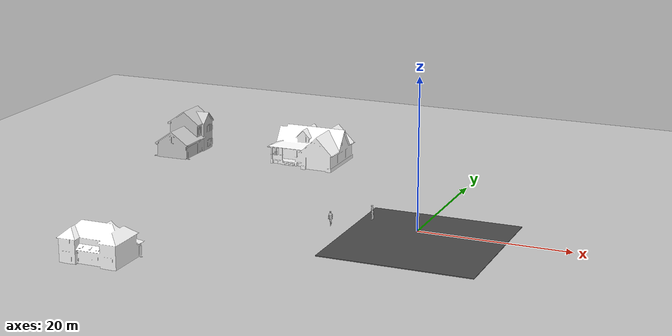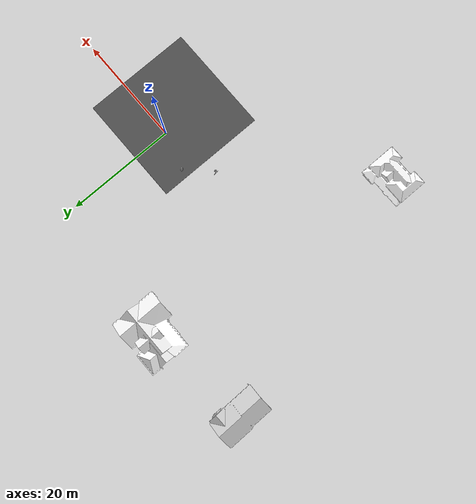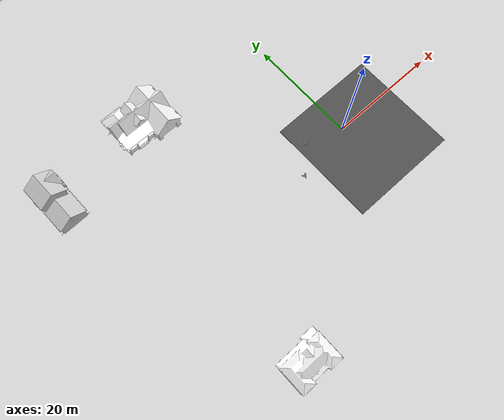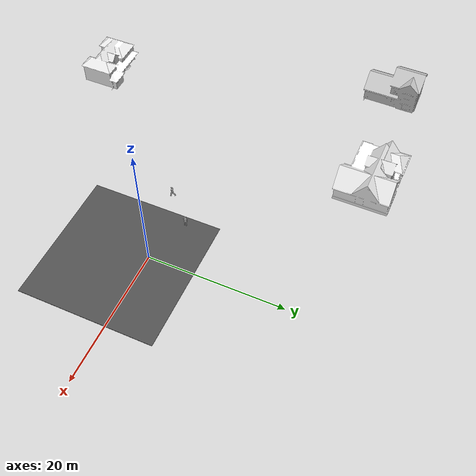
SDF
<sdf version="1.6">
 <world name="default">
  <light name="sun" type="directional">
   <pose>0 0 10 0 -0 0</pose>
   <diffuse>0.8 0.8 0.8 1</diffuse>
   <specular>0.1 0.1 0.1 1</specular>
   <attenuation>
    <range>1000</range>
    <constant>0.9</constant>
    <linear>0.01</linear>
    <quadratic>0.001</quadratic>
   </attenuation>
   <direction>-0.5 0.5 -1</direction>
  </light>
  <model name="ground_plane">
   <static>1</static>
   <link name="link">
    <collision name="collision">
     <geometry><plane><normal>0 0 1</normal><size>100 100</size></plane></geometry>
     <surface><friction><ode><mu>100</mu><mu2>50</mu2></ode></friction></surface>
    </collision>
    <visual name="visual">
     <cast_shadows>0</cast_shadows>
     <geometry><plane><normal>0 0 1</normal><size>100 100</size></plane></geometry>
     <material>
      <script><uri>file://media/materials/scripts/gazebo.material</uri><name>Gazebo/Grey</name></script>
     </material>
    </visual>
   </link>
  </model>
  <gravity>0 0 -9.8</gravity>
  <magnetic_field>6e-06 2.3e-05 -4.2e-05</magnetic_field>
  <atmosphere type="adiabatic"/>
  <physics name="default_physics" default="0" type="ode">
   <max_step_size>0.001</max_step_size>
   <real_time_factor>1</real_time_factor>
   <real_time_update_rate>1000</real_time_update_rate>
  </physics>
  <scene><ambient>0.4 0.4 0.4 1</ambient><background>0.7 0.7 0.7 1</background><shadows>1</shadows></scene>
  <spherical_coordinates>
   <surface_model>EARTH_WGS84</surface_model>
   <latitude_deg>0</latitude_deg>
   <longitude_deg>0</longitude_deg>
   <elevation>0</elevation>
   <heading_deg>0</heading_deg>
  </spherical_coordinates>
  <model name="asphalt_plane">
   <static>1</static>
   <link name="link">
    <collision name="collision"><geometry><box><size>19.9999 20 0.1</size></box></geometry></collision>
    <visual name="visual">
     <cast_shadows>0</cast_shadows>
     <geometry><box><size>19.9999 20 0.1</size></box></geometry>
     <material>
      <script>
       <uri>model://asphalt_plane/materials/scripts</uri>
       <uri>model://asphalt_plane/materials/textures</uri>
       <name>vrc/asphalt</name>
      </script>
     </material>
    </visual>
   </link>
   <pose>1.68773 -3.19362 0 0 -0 0</pose>
  </model>
  <model name="House 1">
   <static>1</static>
   <link name="link">
    <collision name="collision">
     <geometry><mesh><uri>model://house_1/meshes/house_1.dae</uri></mesh></geometry>
    </collision>
    <visual name="visual">
     <geometry><mesh><uri>model://house_1/meshes/house_1.dae</uri></mesh></geometry>
     <material>
      <script>
       <uri>model://house_1/materials/scripts</uri>
       <uri>model://house_1/materials/textures</uri>
       <name>House_1/Diffuse</name>
      </script>
      <shader type="normal_map_object_space"><normal_map>House_1_Normal.png</normal_map></shader>
     </material>
    </visual>
   </link>
   <pose>-24.9541 23.7241 0 0 -0 0</pose>
  </model>
  <model name="House 2">
   <static>1</static>
   <link name="link">
    <collision name="collision">
     <geometry><mesh><uri>model://house_2/meshes/house_2.dae</uri></mesh></geometry>
    </collision>
    <visual name="visual">
     <geometry><mesh><uri>model://house_2/meshes/house_2.dae</uri></mesh></geometry>
     <material>
      <script>
       <uri>model://house_2/materials/scripts</uri>
       <uri>model://house_2/materials/textures</uri>
       <uri>model://house_1/materials/textures</uri>
       <name>House_2/Diffuse</name>
      </script>
      <shader type="normal_map_object_space">
       <normal_map>model://house_1/materials/textures/House_1_Normal.png</normal_map>
      </shader>
     </material>
    </visual>
   </link>
   <pose>-32.1688 -24.4545 0 0 -0 0</pose>
  </model>
  <model name="House 3">
   <static>1</static>
   <link name="link">
    <collision name="collision">
     <geometry><mesh><uri>model://house_3/meshes/house_3.dae</uri></mesh></geometry>
    </collision>
    <visual name="visual">
     <geometry><mesh><uri>model://house_3/meshes/house_3.dae</uri></mesh></geometry>
     <material>
      <script>
       <uri>model://house_3/materials/scripts</uri>
       <uri>model://house_3/materials/textures</uri>
       <uri>model://house_1/materials/textures</uri>
       <name>House_3/Diffuse</name>
      </script>
      <shader type="normal_map_object_space">
       <normal_map>model://house_1/materials/textures/House_1_Normal.png</normal_map>
      </shader>
     </material>
    </visual>
   </link>
   <pose>-44.5066 20.6875 0 -0.000477 -0.02653 -1.55281</pose>
  </model>
  <model name="person_walking">
   <link name="link">
    <inertial>
     <pose>0 0 0.95 0 -0 0</pose>
     <mass>80</mass>
     <inertia><ixx>27.82</ixx><ixy>0</ixy><ixz>0</ixz><iyy>24.88</iyy><iyz>0</iyz><izz>4.57</izz></inertia>
    </inertial>
    <collision name="bottom">
     <pose>0 0 0.01 0 -0 0</pose>
     <geometry><box><size>0.35 0.75 0.02</size></box></geometry>
    </collision>
    <collision name="person">
     <pose>0 0 -0.02 0 -0 0</pose>
     <geometry><mesh><uri>model://person_walking/meshes/walking.dae</uri></mesh></geometry>
    </collision>
    <visual name="visual">
     <pose>0 0 -0.02 0 -0 0</pose>
     <geometry><mesh><uri>model://person_walking/meshes/walking.dae</uri></mesh></geometry>
    </visual>
   </link>
   <pose>-11.0171 -2.03334 0.049999 -2e-06 1e-06 0.000845</pose>
  </model>
  <model name="person_standing">
   <link name="link">
    <inertial>
     <pose>0 -0.1 0.95 0 -0 0</pose>
     <mass>80</mass>
     <inertia><ixx>24.88</ixx><ixy>0</ixy><ixz>0</ixz><iyy>25.73</iyy><iyz>0</iyz><izz>2.48</izz></inertia>
    </inertial>
    <collision name="bottom">
     <pose>0 -0.1 0.01 0 -0 0</pose>
     <geometry><box><size>0.5 0.35 0.02</size></box></geometry>
    </collision>
    <collision name="person">
     <pose>0 0 0.02 0.04 -0 0</pose>
     <geometry><mesh><uri>model://person_standing/meshes/standing.dae</uri></mesh></geometry>
    </collision>
    <visual name="visual">
     <pose>0 0 0.02 0.04 -0 0</pose>
     <geometry><mesh><uri>model://person_standing/meshes/standing.dae</uri></mesh></geometry>
    </visual>
   </link>
   <pose>-6.86185 2.12331 0.05 0 -1e-06 -1.56481</pose>
  </model>
 </world>
</sdf>
